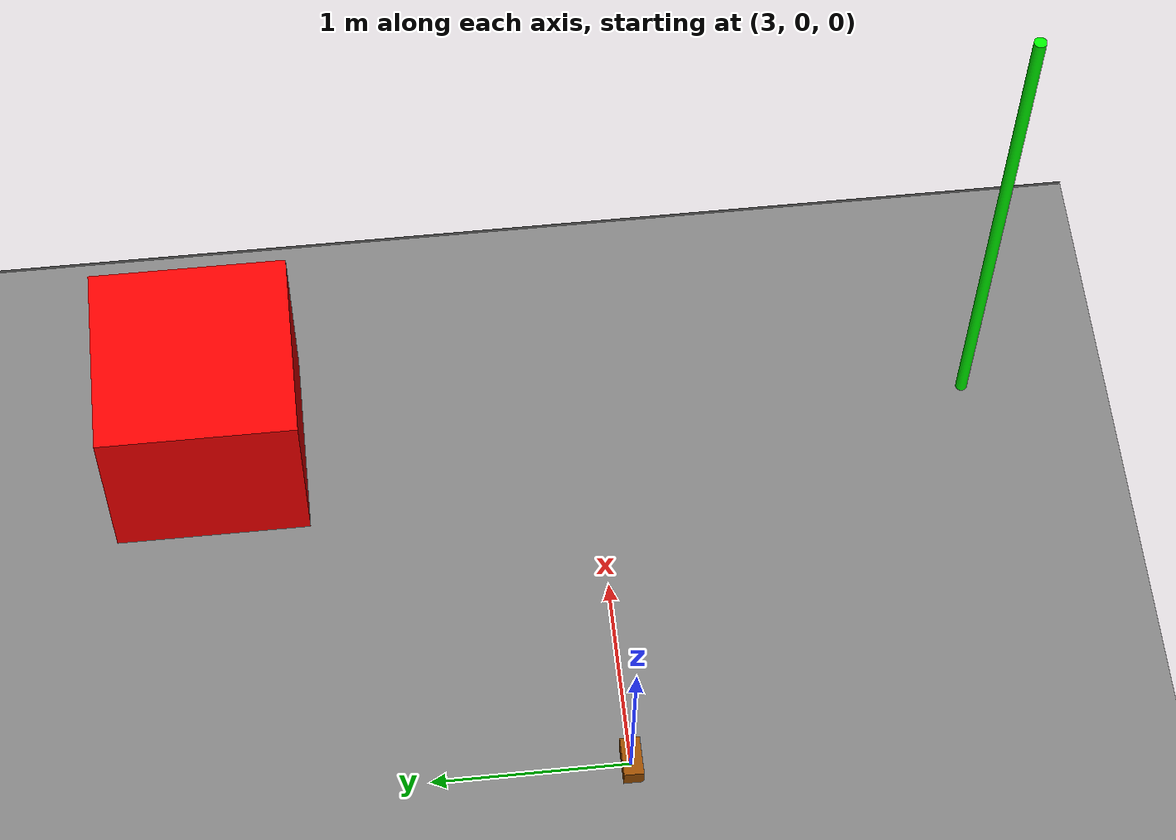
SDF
<?xml version="1.0" ?>
<sdf version="1.8">
  <world name="tactical_test_world">
    <!-- 1. PHYSICS (Exact same as your working demo) -->
    <physics name="default_physics" type="ode">
      <max_step_size>0.002</max_step_size>
      <real_time_factor>1.0</real_time_factor>
      <real_time_update_rate>500</real_time_update_rate>
    </physics>

    <!-- 2. PLUGINS (CRITICAL: Added the Ogre2 Sensors plugin you need) -->
    <plugin filename="gz-sim-physics-system" name="gz::sim::systems::Physics" />
    <plugin filename="gz-sim-sensors-system" name="gz::sim::systems::Sensors">
        <render_engine>ogre2</render_engine>
    </plugin>
    <plugin filename="gz-sim-user-commands-system" name="gz::sim::systems::UserCommands" />
    <plugin filename="gz-sim-scene-broadcaster-system" name="gz::sim::systems::SceneBroadcaster" />

    <light type="directional" name="sun"><pose>0 0 10 0 0 0</pose></light>

    <!-- 3. THE GROUND PLANE -->
    <model name="ground_start">
      <static>true</static>
      <link name="link">
        <collision name="collision">
          <geometry><plane><normal>0 0 1</normal><size>20 40</size></plane></geometry>
        </collision>
        <visual name="visual">
          <geometry><plane><normal>0 0 1</normal><size>20 40</size></plane></geometry>
          <material><ambient>0.3 0.3 0.3 1</ambient><diffuse>0.5 0.5 0.5 1</diffuse></material>
        </visual>
      </link>
      <pose>0 0 0 0 0 0</pose>
    </model>

    <!-- 4. THE VOID (Hole between X=10 and X=18) -->
    <model name="ground_end">
      <static>true</static>
      <link name="link">
        <collision name="collision">
          <geometry><plane><normal>0 0 1</normal><size>30 40</size></plane></geometry>
        </collision>
        <visual name="visual">
          <geometry><plane><normal>0 0 1</normal><size>30 40</size></plane></geometry>
          <material><ambient>0.4 0.4 0.4 1</ambient><diffuse>0.4 0.4 0.4 1</diffuse></material>
        </visual>
      </link>
      <pose>33 0 0 0 0 0</pose> <!-- Gap created here -->
    </model>

    <!-- 5. DENSE TEST: Red Box (Should be AVOIDED) -->
    <model name="dense_box">
      <static>true</static>
      <pose>5 2 0.5 0 0 0</pose>
      <link name="link">
        <collision name="collision"><geometry><box><size>1 1 1</size></box></geometry></collision>
        <visual name="visual">
          <geometry><box><size>1 1 1</size></box></geometry>
          <material><ambient>1 0 0 1</ambient><diffuse>1 0 0 1</diffuse></material>
        </visual>
      </link>
    </model>

    <!-- 6. SPARSE TEST: Thin Pole (Should be IGNORED by Density Filter) -->
    <model name="sparse_grass">
      <static>true</static>
      <pose>5 -2 1.5 0 0 0</pose>
      <link name="link">
        <collision name="collision"><geometry><cylinder><radius>0.03</radius><length>3</length></cylinder></geometry></collision>
        <visual name="visual">
          <geometry><cylinder><radius>0.03</radius><length>3</length></cylinder></geometry>
          <material><ambient>0 1 0 1</ambient><diffuse>0 1 0 1</diffuse></material>
        </visual>
      </link>
    </model>

    <!-- 7. SMALL DEBRIS: 10cm Brick (Should be PASSED OVER) -->
    <model name="brick_1">
      <static>true</static>
      <pose>3 0 0.05 0 0 0</pose>
      <link name="link">
        <collision name="col"><geometry><box><size>0.2 0.1 0.1</size></box></geometry></collision>
        <visual name="vis">
          <geometry><box><size>0.2 0.1 0.1</size></box></geometry>
          <material><ambient>0.6 0.3 0 1</ambient></material>
        </visual>
      </link>
    </model>

  </world>
</sdf>
